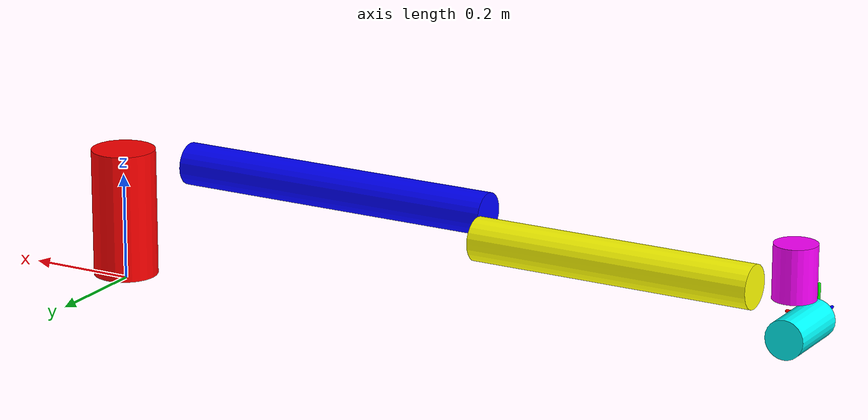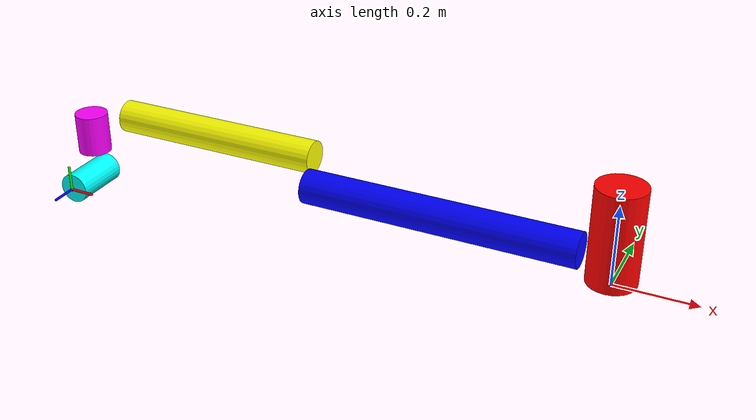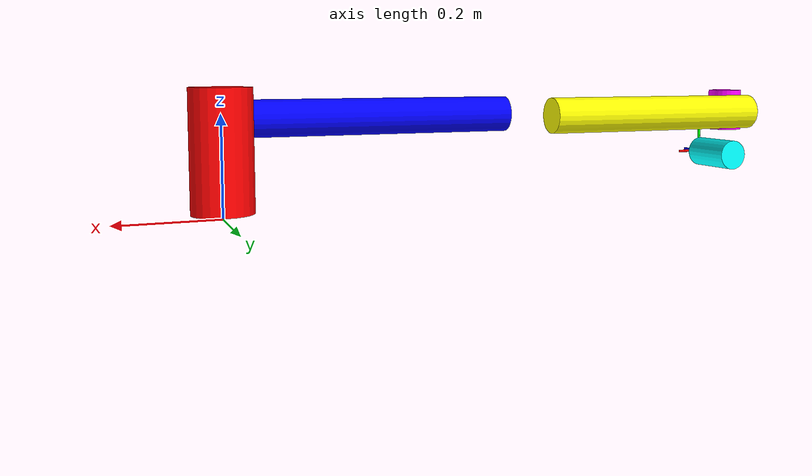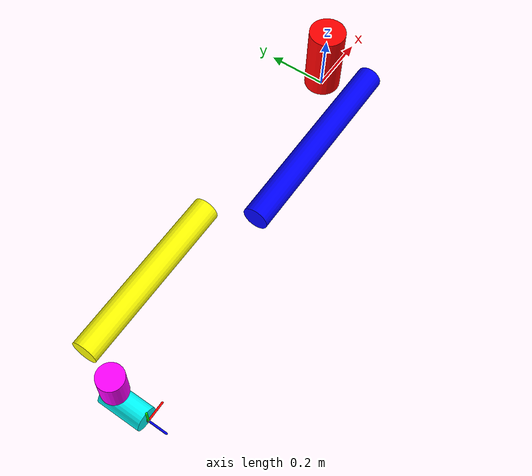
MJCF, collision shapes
<?xml version="1.0" encoding="utf-8"?>
<mujoco>
  <compiler autolimits="true" balanceinertia="true" meshdir="assets" angle="radian" coordinate="local"/>
  <option integrator="implicitfast"/>
  <option gravity="0 0 0"/>
  <size memory="2M"/>

  <visual>
    <global azimuth="120" elevation="-20"/>
    <headlight diffuse="0.6 0.6 0.6" ambient="0.1 0.1 0.1" specular="0 0 0"/>
    <rgba haze="0.15 0.25 0.35 1"/>
  </visual>

  <default>
    <default class="Fairino/">
      <material specular="0.5" shininess="0.25"/>
      <default class="Fairino/type_joint">
        <joint range="-3.0543 3.0543"/>
        <general ctrlrange="-3.0543 3.0543"/>
      </default>
      <default class="Fairino/visual">
        <geom type="mesh" group="2" contype="0" conaffinity="0"/>
      </default>
      <default class="Fairino/collision">
        <geom type="mesh" group="3" contype="1" conaffinity="1"/>
      </default>
    </default>
  </default>

  <asset>
    <material name="Fairino/white" class="Fairino/" rgba="0.89804 0.91765 0.92941 1"/>
    <material name="Fairino/grey"  class="Fairino/" rgba="0.79216 0.81961 0.93333 1"/>
    <mesh name="Fairino/base_link"     class="Fairino/" file="base_link.STL"     scale="1 1 1"/>
    <mesh name="Fairino/shoulder_link" class="Fairino/" file="shoulder_link.STL" scale="1 1 1"/>
    <mesh name="Fairino/upperarm_link" class="Fairino/" file="upperarm_link.STL" scale="1 1 1"/>
    <mesh name="Fairino/forearm_link"  class="Fairino/" file="forearm_link.STL"  scale="1 1 1"/>
    <mesh name="Fairino/wrist1_link"   class="Fairino/" file="wrist1_link.STL"   scale="1 1 1"/>
    <mesh name="Fairino/wrist2_link"   class="Fairino/" file="wrist2_link.STL"   scale="1 1 1"/>
    <mesh name="Fairino/wrist3_link"   class="Fairino/" file="wrist3_link.STL"   scale="1 1 1"/>
  </asset>

  <contact>
    <exclude body1="base"          body2="shoulder_link"/>
    <exclude body1="shoulder_link" body2="upperarm_link"/>
    <exclude body1="upperarm_link" body2="forearm_link"/>
    <exclude body1="forearm_link"  body2="wrist1_link"/>
    <exclude body1="wrist1_link"   body2="wrist2_link"/>
    <exclude body1="wrist2_link"   body2="wrist3_link"/>
  </contact>

  <worldbody>
    <light pos="0 0 1.5" dir="0 0 -1" directional="true"/>
    <body name="Fairino/Robot">

      <body name="base" pos="0 0 0">
        <inertial pos="-0.00037778 -0.00035367 0.035825" euler="0 0 0"
                  mass="0.73775"
                  diaginertia="0.0026263 0.0026258 0.0044466"/>
        <geom type="capsule" fromto="0 0 0 0.05 0 0" rgba="1 0 0 1" size="0.002" contype="0" conaffinity="0"/>
        <geom type="capsule" fromto="0 0 0 0 0.05 0" rgba="0 1 0 1" size="0.002" contype="0" conaffinity="0"/>
        <geom type="capsule" fromto="0 0 0 0 0 0.05" rgba="0 0 1 1" size="0.002" contype="0" conaffinity="0"/>
        <geom name="Fairino/geom_base_visual"    class="Fairino/visual"    material="Fairino/white" mesh="Fairino/base_link"/>
        <!-- With this -->
        <geom name="Fairino/geom_base_collision" class="Fairino/collision"
          type="cylinder"
          pos="0 0 0.13"
          size="0.06 0.12"
          rgba="1 0 0 0.4"/>

        <!-- j1: xyz="0 0 0" rpy="0 0 0" axis="0 0 1" -->
        <body name="shoulder_link" pos="0 0 0" euler="0 0 0">
          <inertial pos="3.3888e-09 -0.0079713 0.17311" euler="0 0 0"
                    mass="9.8122"
                    diaginertia="0.041746 0.039088 0.031895"/>
          <joint name="j1" class="Fairino/type_joint" axis="0 0 1" range="-3.0543 3.0543"/>
          <geom name="Fairino/geom_shoulder_visual"    class="Fairino/visual"    material="Fairino/white" mesh="Fairino/shoulder_link"/>

          <!-- j2: xyz="0 0 0.18" rpy="1.5708 0 0" axis="0 0 1" -->
          <body name="upperarm_link" pos="0 0 0.18" euler="1.5708 0 0">
            <inertial pos="-0.28687 -1.3562e-08 0.18211" euler="0 0 0"
                      mass="29.757"
                      diaginertia="0.0783 2.0297 2.0144"/>
            <joint name="j2" axis="0 0 1" range="-4.6251 1.4835"/>
            <geom name="Fairino/geom_upperarm_visual"    class="Fairino/visual"    material="Fairino/white" mesh="Fairino/upperarm_link"/>
            <geom name="Fairino/geom_upperarm_collision" class="Fairino/collision"
              type="cylinder"
              pos="-0.35 0 0.18"
              euler="0 1.5708 0"
              size="0.04 0.32"
              rgba="0 0 1 0.4"/>

            <!-- j3: xyz="-0.7 0 0" rpy="0 0 0" axis="0 0 1" -->
            <body name="forearm_link" pos="-0.7 0 0" euler="0 0 0">
              <inertial pos="-0.29317 8.0463e-07 0.049055" euler="0 0 0"
                        mass="12.684"
                        diaginertia="0.015471 0.53044 0.52884"/>
              <joint name="j3" axis="0 0 1" range="-2.8274 2.8274"/>
              <geom name="Fairino/geom_forearm_visual"    class="Fairino/visual"    material="Fairino/white" mesh="Fairino/forearm_link"/>
              <geom name="Fairino/geom_forearm_collision" class="Fairino/collision"
                type="cylinder"
                pos="-0.293 0.0 0.045"
                euler="0 1.5708 0"
                size="0.04 0.27"
                rgba="1 1 0 0.4"/>

              <!-- j4: xyz="-0.586 0 0" rpy="0 0 0" axis="0 0 1" -->
              <body name="wrist1_link" pos="-0.586 0 0" euler="0 0 0">
                <inertial pos="5.5958e-07 -0.0024406 0.15369" euler="0 0 0"
                          mass="2.234"
                          diaginertia="0.0034862 0.0026647 0.0032186"/>
                <joint name="j4" axis="0 0 1" range="-4.6251 1.4835"/>
                <geom name="Fairino/geom_wrist1_visual"    class="Fairino/visual"    material="Fairino/white" mesh="Fairino/wrist1_link"/>
                <geom name="Fairino/geom_wrist1_collision" class="Fairino/collision"
                  type="cylinder"
                  pos="0 0 0.16"
                  euler="1.5708 0 0"
                  size="0.04 0.05"
                  rgba="1 0 1 0.4"/>

                <!-- j5: xyz="0 0 0.159" rpy="1.5708 0 0" axis="0 0 1" -->
                <body name="wrist2_link" pos="0 0 0.159" euler="1.5708 0 0">
                  <inertial pos="-5.5958e-07 0.0024406 0.10869" euler="0 0 0"
                            mass="2.234"
                            diaginertia="0.0034862 0.0026647 0.0032186"/>
                  <joint name="j5" axis="0 0 1" range="-3.0543 3.0543"/>
                  <geom name="Fairino/geom_wrist2_visual"    class="Fairino/visual"    material="Fairino/white" mesh="Fairino/wrist2_link"/>
                  <geom name="Fairino/geom_wrist2_collision" class="Fairino/collision"
                    type="cylinder"
                    pos="0.0 0.03 0.115"
                    euler="1.5708 0 1.5708"
                    size="0.0365 0.068"
                    rgba="0 1 1 0.4"/>

                  <!-- j6: xyz="0 0 0.114" rpy="-1.5708 0 0" axis="0 0 1" -->
                  <body name="wrist3_link" pos="0 0 0.114" euler="-1.5708 0 0">
                    <inertial pos="-8.7069e-06 -3.2125e-05 0.082427" euler="0 0 0"
                              mass="0.20143"
                              diaginertia="0.00011168 0.0001118 0.00016774"/>
                    <joint name="j6" axis="0 0 1" range="-3.0543 3.0543"/>
                    <geom name="Fairino/geom_wrist3_visual"    class="Fairino/visual"    material="Fairino/grey" mesh="Fairino/wrist3_link"/>

                    <site name="ee_site" pos="0 0 0.105" quat="1 0 0 0"/>
                    <body name="ee_frame_visual_only" pos="0 0 0.105" quat="1 0 0 0">
                      <geom type="capsule" fromto="0 0 0 0.05 0 0" rgba="1 0 0 1" size="0.002" contype="0" conaffinity="0"/>
                      <geom type="capsule" fromto="0 0 0 0 0.05 0" rgba="0 1 0 1" size="0.002" contype="0" conaffinity="0"/>
                      <geom type="capsule" fromto="0 0 0 0 0 0.05" rgba="0 0 1 1" size="0.002" contype="0" conaffinity="0"/>

                      <body name="tool_frame" pos="0 0 0.0" quat="1 0 0 0">
                        <site name="tool_site" pos="0 0 0" quat="1 0 0 0"/>
                        <geom type="capsule" fromto="0 0 0 0.06 0 0" rgba="1 0 0 1" size="0.003" contype="0" conaffinity="0"/>
                        <geom type="capsule" fromto="0 0 0 0 0.06 0" rgba="0 1 0 1" size="0.003" contype="0" conaffinity="0"/>
                        <geom type="capsule" fromto="0 0 0 0 0 0.06" rgba="0 0 1 1" size="0.003" contype="0" conaffinity="0"/>
                      </body>
                    </body>

                  </body>
                </body>
              </body>
            </body>
          </body>
        </body>
      </body>
    </body>
  </worldbody>

  <actuator>
    <motor joint="j1" gear="1"/>
    <motor joint="j2" gear="1"/>
    <motor joint="j3" gear="1"/>
    <motor joint="j4" gear="1"/>
    <motor joint="j5" gear="1"/>
    <motor joint="j6" gear="1"/>
  </actuator>

</mujoco>
